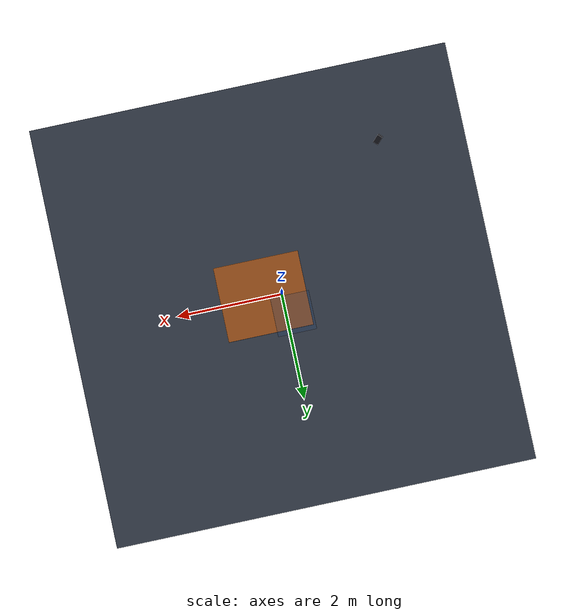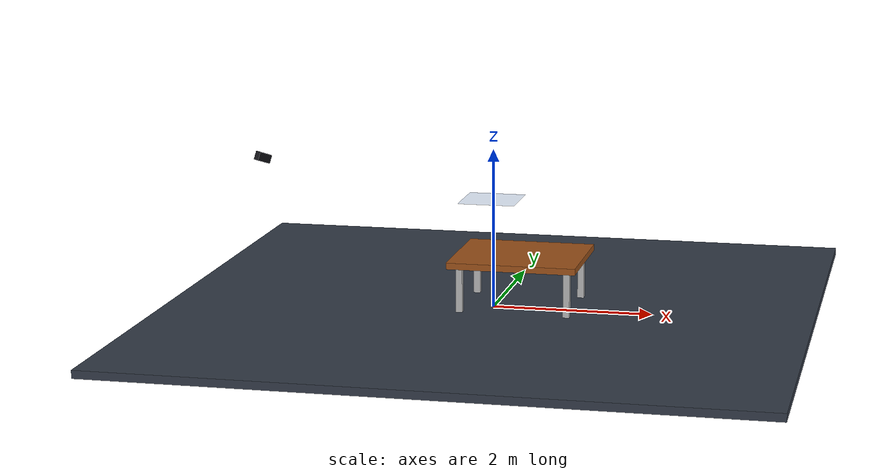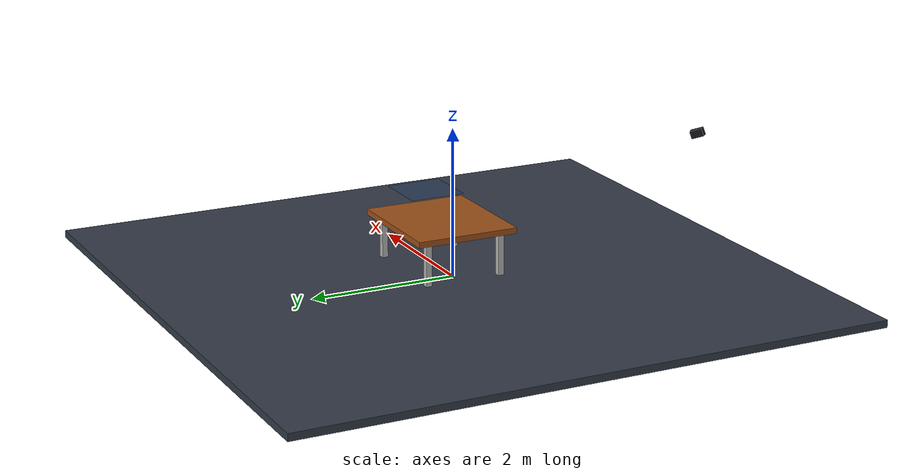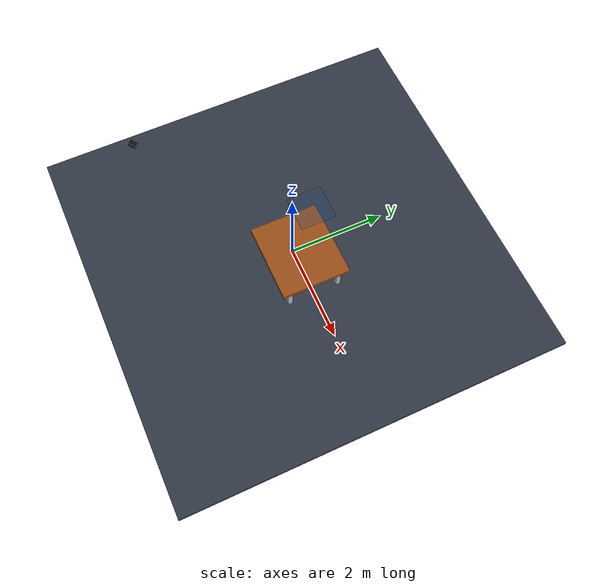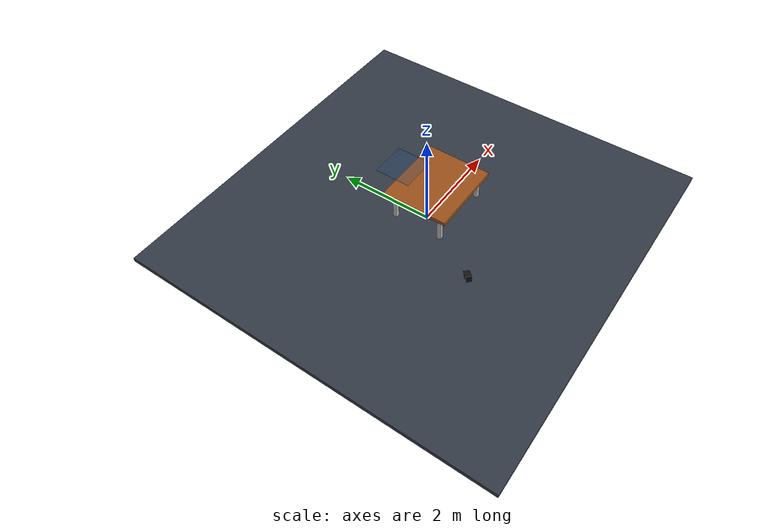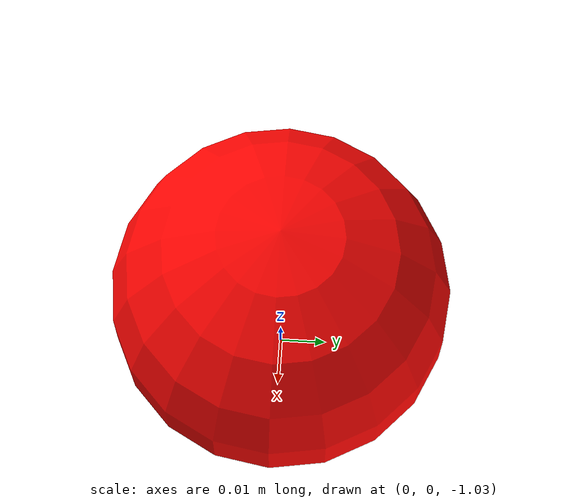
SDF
<?xml version="1.0"?>
<sdf version="1.9">
  <world name="fitts_world">
    <physics name="fast" type="ignored">
      <max_step_size>0.002</max_step_size>
      <real_time_factor>1.0</real_time_factor>
    </physics>
    <plugin filename="gz-sim-physics-system" name="gz::sim::systems::Physics"/>
    <plugin filename="gz-sim-user-commands-system" name="gz::sim::systems::UserCommands"/>
    <plugin filename="gz-sim-scene-broadcaster-system" name="gz::sim::systems::SceneBroadcaster"/>
    <plugin filename="gz-sim-contact-system" name="gz::sim::systems::Contact"/>
    <plugin filename="gz-sim-sensors-system" name="gz::sim::systems::Sensors">
      <render_engine>ogre2</render_engine>
    </plugin>

    <scene>
      <ambient>0.45 0.45 0.45 1</ambient>
      <background>0.08 0.10 0.14 1</background>
      <shadows>true</shadows>
      <grid>true</grid>
    </scene>

    <light name="sun" type="directional">
      <cast_shadows>true</cast_shadows>
      <pose>0 0 8 0 0 0</pose>
      <diffuse>0.9 0.9 0.9 1</diffuse>
      <specular>0.3 0.3 0.3 1</specular>
      <direction>-0.4 0.2 -1</direction>
    </light>

    <model name="ground">
      <static>true</static>
      <link name="ground_link">
        <collision name="collision">
          <geometry><box><size>8 8 0.1</size></box></geometry>
        </collision>
        <visual name="visual">
          <geometry><box><size>8 8 0.1</size></box></geometry>
          <material><ambient>0.16 0.18 0.22 1</ambient><diffuse>0.20 0.23 0.28 1</diffuse></material>
        </visual>
      </link>
    </model>

    <model name="workbench">
      <static>true</static>
      <pose>0.35 0 0 0 0 0</pose>
      <link name="bench_link">
        <collision name="top_collision">
          <pose>0 0 0.66 0 0 0</pose>
          <geometry><box><size>1.6 1.4 0.08</size></box></geometry>
        </collision>
        <visual name="top_visual">
          <pose>0 0 0.66 0 0 0</pose>
          <geometry><box><size>1.6 1.4 0.08</size></box></geometry>
          <material><ambient>0.32 0.16 0.06 1</ambient><diffuse>0.62 0.32 0.10 1</diffuse></material>
        </visual>
        <visual name="leg1"><pose>0.67 0.52 0.31 0 0 0</pose><geometry><box><size>0.08 0.08 0.62</size></box></geometry></visual>
        <visual name="leg2"><pose>0.67 -0.52 0.31 0 0 0</pose><geometry><box><size>0.08 0.08 0.62</size></box></geometry></visual>
        <visual name="leg3"><pose>-0.67 0.52 0.31 0 0 0</pose><geometry><box><size>0.08 0.08 0.62</size></box></geometry></visual>
        <visual name="leg4"><pose>-0.67 -0.52 0.31 0 0 0</pose><geometry><box><size>0.08 0.08 0.62</size></box></geometry></visual>
      </link>
    </model>

    <model name="fitts_plane">
      <static>true</static>
      <pose>-0.12 0.45 1.279 0 0 0</pose>
      <link name="plane_link">
        <visual name="plane_visual">
          <geometry><box><size>0.72 0.72 0.004</size></box></geometry>
          <material><ambient>0.08 0.28 0.55 0.22</ambient><diffuse>0.08 0.28 0.55 0.22</diffuse></material>
          <transparency>0.72</transparency>
        </visual>
      </link>
    </model>

    <!-- Fixed experiment camera. Its optical axis points toward the robot and
         task plane, so recording also works when Gazebo runs headlessly. -->
    <model name="fitts_recording_camera">
      <static>true</static>
      <pose>-2.20 -2.20 2.20 0 0.34 0.7854</pose>
      <link name="camera_link">
        <visual name="camera_body">
          <pose>-0.08 0 0 0 0 0</pose>
          <geometry><box><size>0.16 0.10 0.10</size></box></geometry>
          <material><ambient>0.04 0.04 0.05 1</ambient><diffuse>0.08 0.08 0.10 1</diffuse></material>
        </visual>
        <sensor name="task_camera" type="camera">
          <always_on>true</always_on>
          <update_rate>30</update_rate>
          <topic>/fitts/camera/image</topic>
          <visualize>false</visualize>
          <camera name="fitts_task_camera">
            <horizontal_fov>1.0472</horizontal_fov>
            <image>
              <width>960</width>
              <height>540</height>
              <format>R8G8B8</format>
            </image>
            <clip>
              <near>0.10</near>
              <far>20.0</far>
            </clip>
          </camera>
        </sensor>
      </link>
    </model>

    <model name="fitts_target_w025">
      <static>true</static><pose>0 0 -1 0 0 0</pose>
      <link name="target"><visual name="visual"><geometry><sphere><radius>0.0125</radius></sphere></geometry><material><ambient>1 0.01 0.01 1</ambient><diffuse>1 0.02 0.01 1</diffuse><emissive>0.55 0 0 1</emissive></material></visual></link>
    </model>
    <model name="fitts_target_w040">
      <static>true</static><pose>0 0 -1 0 0 0</pose>
      <link name="target"><visual name="visual"><geometry><sphere><radius>0.020</radius></sphere></geometry><material><ambient>1 0.01 0.01 1</ambient><diffuse>1 0.02 0.01 1</diffuse><emissive>0.55 0 0 1</emissive></material></visual></link>
    </model>
    <model name="fitts_target_w060">
      <static>true</static><pose>0 0 -1 0 0 0</pose>
      <link name="target"><visual name="visual"><geometry><sphere><radius>0.030</radius></sphere></geometry><material><ambient>1 0.01 0.01 1</ambient><diffuse>1 0.02 0.01 1</diffuse><emissive>0.55 0 0 1</emissive></material></visual></link>
    </model>

    <model name="fitts_previous_w025">
      <static>true</static><pose>0 0 -1 0 0 0</pose>
      <link name="target"><visual name="visual"><geometry><sphere><radius>0.0125</radius></sphere></geometry><material><ambient>0.02 0.8 0.12 1</ambient><diffuse>0.03 0.95 0.18 1</diffuse><emissive>0 0.35 0.04 1</emissive></material></visual></link>
    </model>
    <model name="fitts_previous_w040">
      <static>true</static><pose>0 0 -1 0 0 0</pose>
      <link name="target"><visual name="visual"><geometry><sphere><radius>0.020</radius></sphere></geometry><material><ambient>0.02 0.8 0.12 1</ambient><diffuse>0.03 0.95 0.18 1</diffuse><emissive>0 0.35 0.04 1</emissive></material></visual></link>
    </model>
    <model name="fitts_previous_w060">
      <static>true</static><pose>0 0 -1 0 0 0</pose>
      <link name="target"><visual name="visual"><geometry><sphere><radius>0.030</radius></sphere></geometry><material><ambient>0.02 0.8 0.12 1</ambient><diffuse>0.03 0.95 0.18 1</diffuse><emissive>0 0.35 0.04 1</emissive></material></visual></link>
    </model>
  </world>
</sdf>
